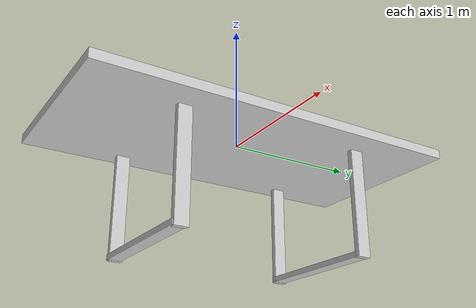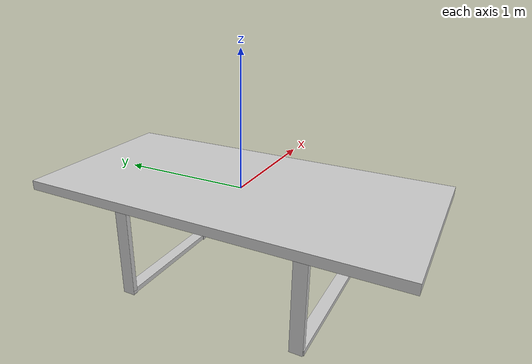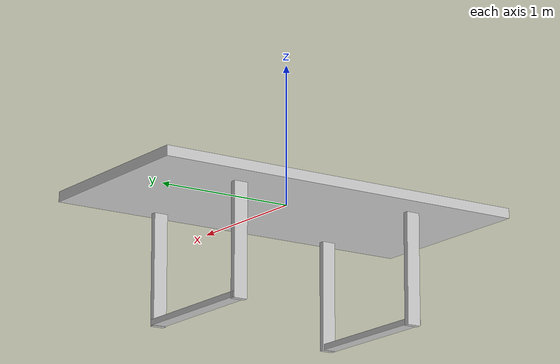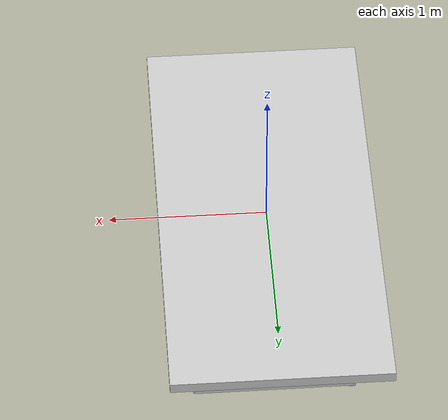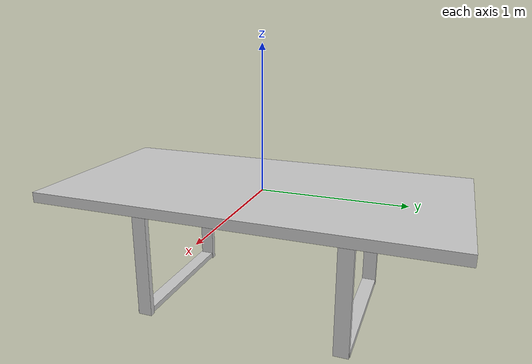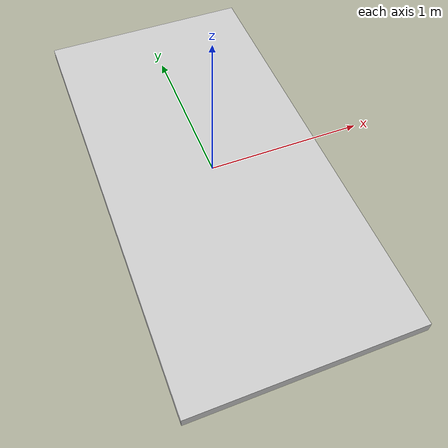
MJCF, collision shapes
<?xml version='1.0' encoding='utf-8'?>
<mujoco model="desk">
  <asset>
    <texture file="/root/repo/LIBERO/libero/libero/assets/scenes/desk/desk_texture.png" name="tex-desk" type="2d" />
    <material name="desk" reflectance="0.5" texrepeat="1 1" texture="tex-desk" texuniform="false" />
    <mesh file="/root/repo/LIBERO/libero/libero/assets/scenes/desk/visual/desk_vis.msh" name="desk_vis" scale="1.0 1.0 1.0" />
  </asset>
  <worldbody>
    <body pos="0.0 0.0 -0.85">
      <body name="object">
        <geom solimp="0.998 0.998 0.001" solref="0.001 1" density="100" friction="0.95 0.3 0.1" type="mesh" mesh="desk_vis" conaffinity="0" contype="0" group="1" material="desk" />
        <geom solimp="0.998 0.998 0.001" solref="0.001 1" density="100" friction="0.95 0.3 0.1" type="box" pos="-0.00000 0.00000 0.84929" quat="0.50000 -0.50000 0.50000 0.50000" size="0.03584 0.68946 1.39273" group="0" rgba="0.8 0.8 0.8 0.3" />
        <geom solimp="0.998 0.998 0.001" solref="0.001 1" density="100" friction="0.95 0.3 0.1" type="box" pos="-0.50048 -0.69064 0.39431" quat="0.00000 0.00000 1.00000 0.00000" size="0.02002 0.05031 0.39407" group="0" rgba="0.8 0.8 0.8 0.3" />
        <geom solimp="0.998 0.998 0.001" solref="0.001 1" density="100" friction="0.95 0.3 0.1" type="box" pos="0.49617 -0.69064 0.39431" quat="1.00000 -0.00000 -0.00000 -0.00000" size="0.02002 0.05031 0.39407" group="0" rgba="0.8 0.8 0.8 0.3" />
        <geom solimp="0.998 0.998 0.001" solref="0.001 1" density="100" friction="0.95 0.3 0.1" type="box" pos="0.49617 0.70968 0.39431" quat="0.00000 0.00000 1.00000 0.00000" size="0.02002 0.05032 0.39407" group="0" rgba="0.8 0.8 0.8 0.3" />
        <geom solimp="0.998 0.998 0.001" solref="0.001 1" density="100" friction="0.95 0.3 0.1" type="box" pos="-0.50048 0.71473 0.39431" quat="1.00000 -0.00000 -0.00000 -0.00000" size="0.02002 0.05031 0.39407" group="0" rgba="0.8 0.8 0.8 0.3" />
        <geom solimp="0.998 0.998 0.001" solref="0.001 1" density="100" friction="0.95 0.3 0.1" type="box" pos="-0.00488 0.71473 0.02528" quat="0.70811 0.00000 -0.70610 -0.00000" size="0.02002 0.05031 0.51262" group="0" rgba="0.8 0.8 0.8 0.3" />
        <geom solimp="0.998 0.998 0.001" solref="0.001 1" density="100" friction="0.95 0.3 0.1" type="box" pos="-0.00488 -0.69765 0.02528" quat="0.70811 0.00000 -0.70610 -0.00000" size="0.02002 0.05032 0.51262" group="0" rgba="0.8 0.8 0.8 0.3" />
      </body>
      <site rgba="0 0 0 0" size="0.005" pos="0 0 -0.06" name="bottom_site" />
      <site rgba="0 0 0 0" size="0.005" pos="0 0 0.04" name="top_site" />
      <site rgba="0 0 0 0" size="0.005" pos="0.025 0.025 0" name="horizontal_radius_site" />
    </body>
  </worldbody>
</mujoco>
